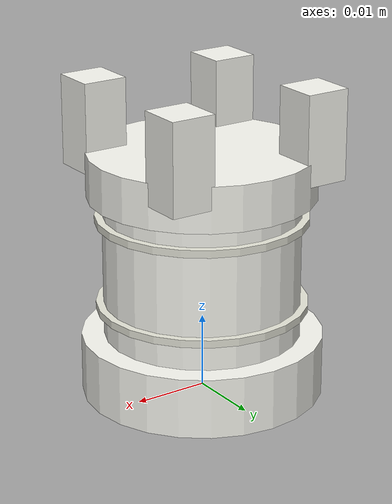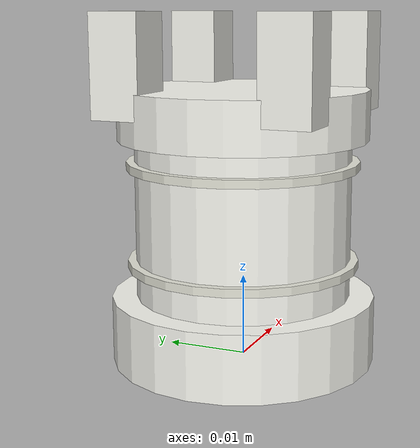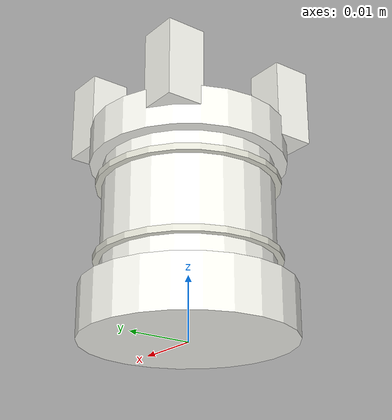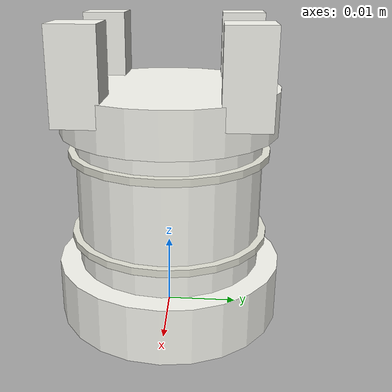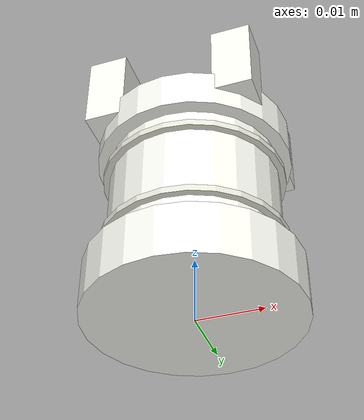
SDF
<?xml version="1.0" ?>
<sdf version="1.6">
  <model name="chess_rook_white">
    <link name="link">
      <pose>0 0 0 0 0 0</pose>

      <inertial>
        <mass>0.08</mass>
        <pose>0 0 0.015 0 0 0</pose>
        <inertia>
          <ixx>0.00002</ixx>
          <ixy>0</ixy>
          <ixz>0</ixz>
          <iyy>0.00002</iyy>
          <iyz>0</iyz>
          <izz>0.00001</izz>
        </inertia>
      </inertial>

      <!-- Base -->
      <collision name="base_collision">
        <pose>0 0 0.004 0 0 0</pose>
        <geometry>
          <cylinder>
            <radius>0.016</radius>
            <length>0.008</length>
          </cylinder>
        </geometry>
        <surface>
          <friction>
            <ode>
              <mu>0.8</mu>
              <mu2>0.8</mu2>
            </ode>
          </friction>
          <bounce>
            <restitution_coefficient>0.1</restitution_coefficient>
          </bounce>
        </surface>
      </collision>

      <!-- Main tower body -->
      <collision name="tower_collision">
        <pose>0 0 0.018 0 0 0</pose>
        <geometry>
          <cylinder>
            <radius>0.013</radius>
            <length>0.020</length>
          </cylinder>
        </geometry>
      </collision>

      <!-- Castle top (battlements base) -->
      <collision name="castle_base_collision">
        <pose>0 0 0.030 0 0 0</pose>
        <geometry>
          <cylinder>
            <radius>0.015</radius>
            <length>0.006</length>
          </cylinder>
        </geometry>
      </collision>

      <!-- Battlements (4 corner towers) -->
      <collision name="battlement_1">
        <pose>0.010 0.010 0.036 0 0 0</pose>
        <geometry>
          <box>
            <size>0.006 0.006 0.012</size>
          </box>
        </geometry>
      </collision>

      <collision name="battlement_2">
        <pose>-0.010 0.010 0.036 0 0 0</pose>
        <geometry>
          <box>
            <size>0.006 0.006 0.012</size>
          </box>
        </geometry>
      </collision>

      <collision name="battlement_3">
        <pose>0.010 -0.010 0.036 0 0 0</pose>
        <geometry>
          <box>
            <size>0.006 0.006 0.012</size>
          </box>
        </geometry>
      </collision>

      <collision name="battlement_4">
        <pose>-0.010 -0.010 0.036 0 0 0</pose>
        <geometry>
          <box>
            <size>0.006 0.006 0.012</size>
          </box>
        </geometry>
      </collision>

      <!-- Visuals -->
      <visual name="base_visual">
        <pose>0 0 0.004 0 0 0</pose>
        <geometry>
          <cylinder>
            <radius>0.016</radius>
            <length>0.008</length>
          </cylinder>
        </geometry>
        <material>
          <ambient>0.95 0.95 0.9 1</ambient>
          <diffuse>0.98 0.98 0.95 1</diffuse>
          <specular>0.4 0.4 0.4 1</specular>
        </material>
      </visual>

      <visual name="tower_visual">
        <pose>0 0 0.018 0 0 0</pose>
        <geometry>
          <cylinder>
            <radius>0.013</radius>
            <length>0.020</length>
          </cylinder>
        </geometry>
        <material>
          <ambient>0.95 0.95 0.9 1</ambient>
          <diffuse>0.98 0.98 0.95 1</diffuse>
          <specular>0.4 0.4 0.4 1</specular>
        </material>
      </visual>

      <visual name="castle_base_visual">
        <pose>0 0 0.030 0 0 0</pose>
        <geometry>
          <cylinder>
            <radius>0.015</radius>
            <length>0.006</length>
          </cylinder>
        </geometry>
        <material>
          <ambient>0.95 0.95 0.9 1</ambient>
          <diffuse>0.98 0.98 0.95 1</diffuse>
          <specular>0.4 0.4 0.4 1</specular>
        </material>
      </visual>

      <!-- Battlement visuals -->
      <visual name="battlement_1_visual">
        <pose>0.010 0.010 0.036 0 0 0</pose>
        <geometry>
          <box>
            <size>0.006 0.006 0.012</size>
          </box>
        </geometry>
        <material>
          <ambient>0.95 0.95 0.9 1</ambient>
          <diffuse>0.98 0.98 0.95 1</diffuse>
          <specular>0.4 0.4 0.4 1</specular>
        </material>
      </visual>

      <visual name="battlement_2_visual">
        <pose>-0.010 0.010 0.036 0 0 0</pose>
        <geometry>
          <box>
            <size>0.006 0.006 0.012</size>
          </box>
        </geometry>
        <material>
          <ambient>0.95 0.95 0.9 1</ambient>
          <diffuse>0.98 0.98 0.95 1</diffuse>
          <specular>0.4 0.4 0.4 1</specular>
        </material>
      </visual>

      <visual name="battlement_3_visual">
        <pose>0.010 -0.010 0.036 0 0 0</pose>
        <geometry>
          <box>
            <size>0.006 0.006 0.012</size>
          </box>
        </geometry>
        <material>
          <ambient>0.95 0.95 0.9 1</ambient>
          <diffuse>0.98 0.98 0.95 1</diffuse>
          <specular>0.4 0.4 0.4 1</specular>
        </material>
      </visual>

      <visual name="battlement_4_visual">
        <pose>-0.010 -0.010 0.036 0 0 0</pose>
        <geometry>
          <box>
            <size>0.006 0.006 0.012</size>
          </box>
        </geometry>
        <material>
          <ambient>0.95 0.95 0.9 1</ambient>
          <diffuse>0.98 0.98 0.95 1</diffuse>
          <specular>0.4 0.4 0.4 1</specular>
        </material>
      </visual>

      <!-- Decorative bands -->
      <visual name="band_1">
        <pose>0 0 0.012 0 0 0</pose>
        <geometry>
          <cylinder>
            <radius>0.014</radius>
            <length>0.001</length>
          </cylinder>
        </geometry>
        <material>
          <ambient>0.85 0.85 0.8 1</ambient>
          <diffuse>0.9 0.9 0.85 1</diffuse>
          <specular>0.3 0.3 0.3 1</specular>
        </material>
      </visual>

      <visual name="band_2">
        <pose>0 0 0.024 0 0 0</pose>
        <geometry>
          <cylinder>
            <radius>0.014</radius>
            <length>0.001</length>
          </cylinder>
        </geometry>
        <material>
          <ambient>0.85 0.85 0.8 1</ambient>
          <diffuse>0.9 0.9 0.85 1</diffuse>
          <specular>0.3 0.3 0.3 1</specular>
        </material>
      </visual>
    </link>
  </model>
</sdf>
